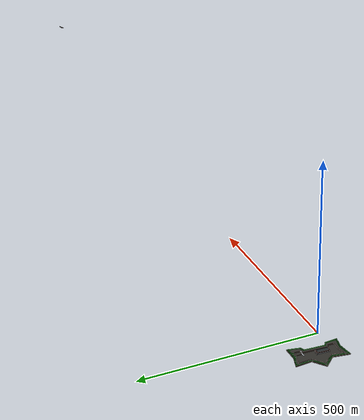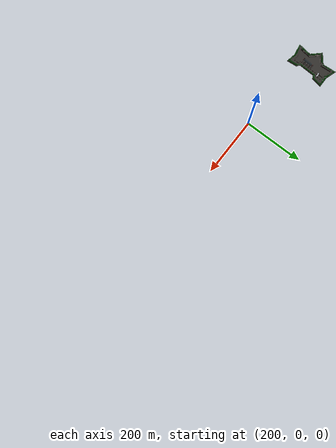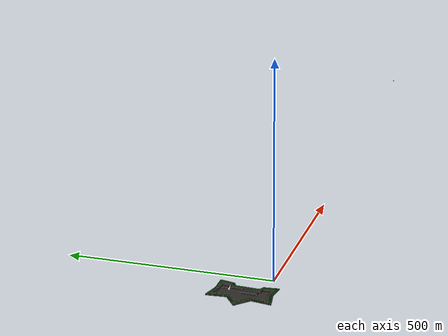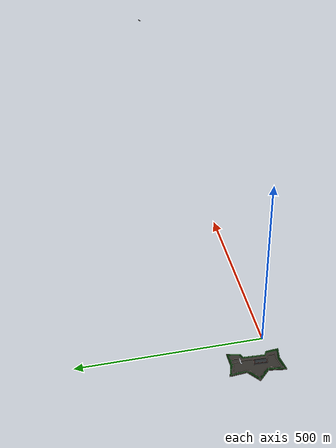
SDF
<?xml version="1.0"?>
<sdf version="1.4">
  <world name="default">

    <include>
        <uri>model://sun</uri>
    </include>
    <model name="my_mesh">
       <pose>0 0 0 1.54 0 1.54</pose>
      <static>true</static>
      <link name="body">
        <visual name="visual">
          <geometry>

            <mesh><uri>file:///home/rohan/work_workspace/src/Simulator/spiri_description/meshes/test_scale.dae</uri></mesh>
          </geometry>
        </visual>
      </link>
    </model>
  </world>
</sdf>
